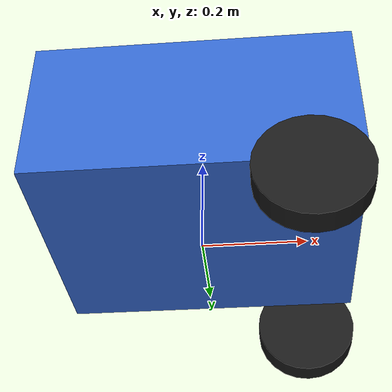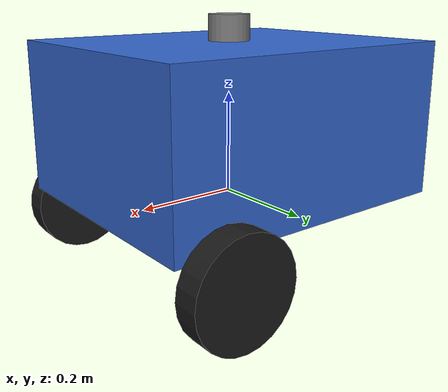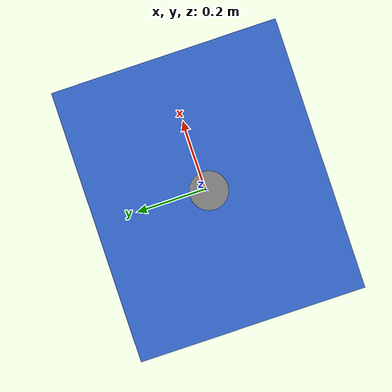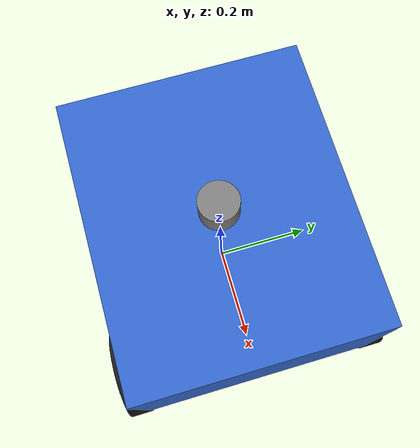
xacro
<?xml version="1.0"?>
<robot xmlns:xacro="http://www.ros.org/wiki/xacro"
        xmlns:gazebo="http://gazebosim.org"
        name="inspection_robot">

  <!-- 包含传感器宏 -->
  <xacro:include filename="$(find deep_pit_simulation)/urdf/sensors.xacro"/>

  <!-- ==================== 常量定义 ==================== -->
  <xacro:property name="pi" value="3.1415926535897931"/>

  <!-- 底盘参数 -->
  <xacro:property name="base_length" value="0.6"/>
  <xacro:property name="base_width" value="0.5"/>
  <xacro:property name="base_height" value="0.3"/>
  <xacro:property name="base_mass" value="25.0"/>

  <!-- 轮子参数 -->
  <xacro:property name="wheel_radius" value="0.1"/>
  <xacro:property name="wheel_width" value="0.05"/>
  <xacro:property name="wheel_mass" value="1.0"/>
  <xacro:property name="wheel_ygap" value="0.025"/>
  <xacro:property name="wheel_xoff" value="0.2"/>
  <xacro:property name="wheel_zoff" value="0.05"/>

  <!-- ==================== 底盘 ==================== -->
  <link name="base_link">
    <visual>
      <origin xyz="0 0 ${base_height/2}" rpy="0 0 0"/>
      <geometry>
        <box size="${base_length} ${base_width} ${base_height}"/>
      </geometry>
      <material name="blue">
        <color rgba="0.2 0.4 0.8 1"/>
      </material>
    </visual>
    <collision>
      <origin xyz="0 0 ${base_height/2}" rpy="0 0 0"/>
      <geometry>
        <box size="${base_length} ${base_width} ${base_height}"/>
      </geometry>
    </collision>
    <inertial>
      <origin xyz="0 0 ${base_height/2}" rpy="0 0 0"/>
      <mass value="${base_mass}"/>
      <inertia ixx="${base_mass*(base_width**2 + base_height**2)/12}"
               iyy="${base_mass*(base_length**2 + base_height**2)/12}"
               izz="${base_mass*(base_length**2 + base_width**2)/12}"
               ixy="0" ixz="0" iyz="0"/>
    </inertial>
  </link>

  <!-- ==================== 左轮 ==================== -->
  <link name="left_wheel">
    <visual>
      <origin xyz="0 0 0" rpy="${pi/2} 0 0"/>
      <geometry>
        <cylinder radius="${wheel_radius}" length="${wheel_width}"/>
      </geometry>
      <material name="black">
        <color rgba="0.1 0.1 0.1 1"/>
      </material>
    </visual>
    <collision>
      <origin xyz="0 0 0" rpy="${pi/2} 0 0"/>
      <geometry>
        <cylinder radius="${wheel_radius}" length="${wheel_width}"/>
      </geometry>
    </collision>
    <inertial>
      <mass value="${wheel_mass}"/>
      <inertia ixx="${wheel_mass*(3*wheel_radius**2 + wheel_width**2)/12}"
               iyy="${wheel_mass*(3*wheel_radius**2 + wheel_width**2)/12}"
               izz="${wheel_mass*wheel_radius**2/2}"
               ixy="0" ixz="0" iyz="0"/>
    </inertial>
  </link>

  <joint name="left_wheel_joint" type="continuous">
    <parent link="base_link"/>
    <child link="left_wheel"/>
    <origin xyz="${wheel_xoff} ${base_width/2 + wheel_ygap} ${-wheel_zoff}" rpy="0 0 0"/>
    <axis xyz="0 1 0"/>
  </joint>

  <!-- ==================== 右轮 ==================== -->
  <link name="right_wheel">
    <visual>
      <origin xyz="0 0 0" rpy="${pi/2} 0 0"/>
      <geometry>
        <cylinder radius="${wheel_radius}" length="${wheel_width}"/>
      </geometry>
      <material name="black">
        <color rgba="0.1 0.1 0.1 1"/>
      </material>
    </visual>
    <collision>
      <origin xyz="0 0 0" rpy="${pi/2} 0 0"/>
      <geometry>
        <cylinder radius="${wheel_radius}" length="${wheel_width}"/>
      </geometry>
    </collision>
    <inertial>
      <mass value="${wheel_mass}"/>
      <inertia ixx="${wheel_mass*(3*wheel_radius**2 + wheel_width**2)/12}"
               iyy="${wheel_mass*(3*wheel_radius**2 + wheel_width**2)/12}"
               izz="${wheel_mass*wheel_radius**2/2}"
               ixy="0" ixz="0" iyz="0"/>
    </inertial>
  </link>

  <joint name="right_wheel_joint" type="continuous">
    <parent link="base_link"/>
    <child link="right_wheel"/>
    <origin xyz="${wheel_xoff} ${-(base_width/2 + wheel_ygap)} ${-wheel_zoff}" rpy="0 0 0"/>
    <axis xyz="0 1 0"/>
  </joint>

  <!-- ==================== 传感器安装 ==================== -->

  <!-- 激光雷达 (顶部中央) -->
  <xacro:rplidar_a2
    prefix="robot_"
    parent_link="base_link"
    xyz="0 0 ${base_height + 0.025}"
    rpy="0 0 0"/>

  <!-- 深度相机 (前部) -->
  <xacro:realsense_d435i
    prefix="robot_"
    parent_link="base_link"
    xyz="0.25 0 ${base_height/2}"
    rpy="0 0 0"/>

  <!-- IMU (底盘中央) -->
  <xacro:bmi055_imu
    prefix="robot_"
    parent_link="base_link"
    xyz="0 0 ${base_height/2}"
    rpy="0 0 0"/>

  <!-- ==================== Gazebo 插件 ==================== -->

  <!-- 差速驱动插件 -->
  <gazebo>
    <plugin name="gazebo_ros_diff_drive" filename="libgazebo_ros_diff_drive.so">
      <ros>
        <namespace>/robot</namespace>
      </ros>
      <update_rate>50</update_rate>
      <left_joint>left_wheel_joint</left_joint>
      <right_joint>right_wheel_joint</right_joint>
      <wheel_separation>${base_width + 2*wheel_ygap}</wheel_separation>
      <wheel_diameter>${2*wheel_radius}</wheel_diameter>
      <max_wheel_torque>20</max_wheel_torque>
      <max_wheel_acceleration>1.0</max_wheel_acceleration>
      <command_topic>cmd_vel</command_topic>
      <publish_wheel_tf>true</publish_wheel_tf>
      <publish_tf>true</publish_tf>
      <odometry_topic>odom</odometry_topic>
      <odometry_frame>odom</odometry_frame>
      <robot_base_frame>base_link</robot_base_frame>
    </plugin>
  </gazebo>

  <!-- ROS2 Control 插件 (可选) -->
  <gazebo>
    <plugin name="gazebo_ros2_control/GazeboSystem" filename="libgazebo_ros2_control_system.so">
      <parameters>$(find deep_pit_simulation)/config/robot_controllers.yaml</parameters>
    </plugin>
  </gazebo>

</robot>

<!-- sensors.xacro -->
<robot xmlns:xacro="http://www.ros.org/wiki/xacro"
        xmlns:gazebo="http://gazebosim.org">

  <!-- 常量 -->
  <xacro:property name="pi" value="3.1415926535897931"/>

  <!-- ==================== 激光雷达 (RPLIDAR A2) ==================== -->
  <xacro:macro name="rplidar_a2" params="prefix parent_link xyz rpy">

    <link name="${prefix}lidar_link">
      <visual>
        <origin xyz="0 0 0" rpy="0 0 0"/>
        <geometry>
          <cylinder radius="0.04" length="0.05"/>
        </geometry>
        <material name="grey">
          <color rgba="0.5 0.5 0.5 1"/>
        </material>
      </visual>
      <collision>
        <geometry>
          <cylinder radius="0.04" length="0.05"/>
        </geometry>
      </collision>
      <inertial>
        <mass value="0.2"/>
        <inertia ixx="0.0001" iyy="0.0001" izz="0.0001" ixy="0" ixz="0" iyz="0"/>
      </inertial>
    </link>

    <joint name="${prefix}lidar_joint" type="fixed">
      <parent link="${parent_link}"/>
      <child link="${prefix}lidar_link"/>
      <origin xyz="${xyz}" rpy="${rpy}"/>
    </joint>

    <!-- Gazebo激光雷达插件 -->
    <gazebo reference="${prefix}lidar_link">
      <sensor type="ray" name="${prefix}lidar_sensor">
        <pose>0 0 0 0 0 0</pose>
        <visualize>true</visualize>
        <update_rate>10</update_rate>
        <ray>
          <scan>
            <horizontal>
              <samples>1440</samples>
              <resolution>1</resolution>
              <min_angle>${-pi}</min_angle>
              <max_angle>${pi}</max_angle>
            </horizontal>
          </scan>
          <range>
            <min>0.15</min>
            <max>12.0</max>
            <resolution>0.01</resolution>
          </range>
          <noise>
            <type>gaussian</type>
            <mean>0.0</mean>
            <stddev>0.01</stddev>
          </noise>
        </ray>
        <plugin name="${prefix}lidar_plugin" filename="libgazebo_ros_ray_sensor.so">
          <ros>
            <namespace>/robot</namespace>
            <remapping>~/out:=/scan</remapping>
          </ros>
          <frame_name>${prefix}lidar_link</frame_name>
        </plugin>
      </sensor>
    </gazebo>
  </xacro:macro>

  <!-- ==================== 深度相机 (RealSense D435i) ==================== -->
  <xacro:macro name="realsense_d435i" params="prefix parent_link xyz rpy">

    <link name="${prefix}camera_link">
      <visual>
        <origin xyz="0 0 0" rpy="0 0 0"/>
        <geometry>
          <box size="0.09 0.025 0.025"/>
        </geometry>
        <material name="black">
          <color rgba="0.1 0.1 0.1 1"/>
        </material>
      </visual>
      <collision>
        <geometry>
          <box size="0.09 0.025 0.025"/>
        </geometry>
      </collision>
      <inertial>
        <mass value="0.1"/>
        <inertia ixx="0.0001" iyy="0.0001" izz="0.0001" ixy="0" ixz="0" iyz="0"/>
      </inertial>
    </link>

    <joint name="${prefix}camera_joint" type="fixed">
      <parent link="${parent_link}"/>
      <child link="${prefix}camera_link"/>
      <origin xyz="${xyz}" rpy="${rpy}"/>
    </joint>

    <!-- RGB相机插件 -->
    <gazebo reference="${prefix}camera_link">
      <sensor type="camera" name="${prefix}rgb_camera">
        <update_rate>30</update_rate>
        <camera>
          <horizontal_fov>${60*pi/180}</horizontal_fov>
          <image>
            <width>640</width>
            <height>480</height>
            <format>R8G8B8</format>
          </image>
          <clip>
            <near>0.1</near>
            <far>100</far>
          </clip>
          <noise>
            <type>gaussian</type>
            <mean>0.0</mean>
            <stddev>0.007</stddev>
          </noise>
        </camera>
        <plugin name="${prefix}rgb_camera_plugin" filename="libgazebo_ros_camera.so">
          <ros>
            <namespace>/robot</namespace>
          </ros>
          <camera_name>camera</camera_name>
          <image_topic_name>rgb/image_raw</image_topic_name>
          <camera_info_topic_name>rgb/camera_info</camera_info_topic_name>
          <frame_name>${prefix}camera_link</frame_name>
        </plugin>
      </sensor>
    </gazebo>

    <!-- 深度相机插件 -->
    <gazebo reference="${prefix}camera_link">
      <sensor type="depth" name="${prefix}depth_camera">
        <update_rate>30</update_rate>
        <camera>
          <horizontal_fov>${60*pi/180}</horizontal_fov>
          <image>
            <width>640</width>
            <height>480</height>
            <format>R8G8B8</format>
          </image>
          <clip>
            <near>0.3</near>
            <far>5.0</far>
          </clip>
          <noise>
            <type>gaussian</type>
            <mean>0.0</mean>
            <stddev>0.02</stddev>
          </noise>
        </camera>
        <plugin name="${prefix}depth_plugin" filename="libgazebo_ros_depth_camera.so">
          <ros>
            <namespace>/robot</namespace>
          </ros>
          <camera_name>camera</camera_name>
          <depth_image_topic_name>depth/image_raw</depth_image_topic_name>
          <depth_camera_info_topic_name>depth/camera_info</depth_camera_info_topic_name>
          <point_cloud_topic_name>depth/points</point_cloud_topic_name>
          <frame_name>${prefix}camera_link</frame_name>
        </plugin>
      </sensor>
    </gazebo>
  </xacro:macro>

  <!-- ==================== IMU (BMI055) ==================== -->
  <xacro:macro name="bmi055_imu" params="prefix parent_link xyz rpy">

    <link name="${prefix}imu_link">
      <visual>
        <origin xyz="0 0 0" rpy="0 0 0"/>
        <geometry>
          <box size="0.02 0.02 0.01"/>
        </geometry>
        <material name="green">
          <color rgba="0.2 0.8 0.2 1"/>
        </material>
      </visual>
      <collision>
        <geometry>
          <box size="0.02 0.02 0.01"/>
        </geometry>
      </collision>
      <inertial>
        <mass value="0.01"/>
        <inertia ixx="0.00001" iyy="0.00001" izz="0.00001" ixy="0" ixz="0" iyz="0"/>
      </inertial>
    </link>

    <joint name="${prefix}imu_joint" type="fixed">
      <parent link="${parent_link}"/>
      <child link="${prefix}imu_link"/>
      <origin xyz="${xyz}" rpy="${rpy}"/>
    </joint>

    <!-- Gazebo IMU插件 -->
    <gazebo reference="${prefix}imu_link">
      <gravity>true</gravity>
      <sensor name="${prefix}imu_sensor" type="imu">
        <always_on>true</always_on>
        <update_rate>200</update_rate>
        <visualize>true</visualize>
        <plugin name="${prefix}imu_plugin" filename="libgazebo_ros_imu_sensor.so">
          <ros>
            <namespace>/robot</namespace>
            <remapping>~/out:=imu/data</remapping>
          </ros>
          <body_name>${prefix}imu_link</body_name>
          <update_rate_hz>200</update_rate_hz>
          <gaussian_noise>0.02</gaussian_noise>
          <xyz_offset>0 0 0</xyz_offset>
          <rpy_offset>0 0 0</rpy_offset>
          <frame_name>${prefix}imu_link</frame_name>
        </plugin>
        <pose>0 0 0 0 0 0</pose>
      </sensor>
    </gazebo>
  </xacro:macro>

</robot>
